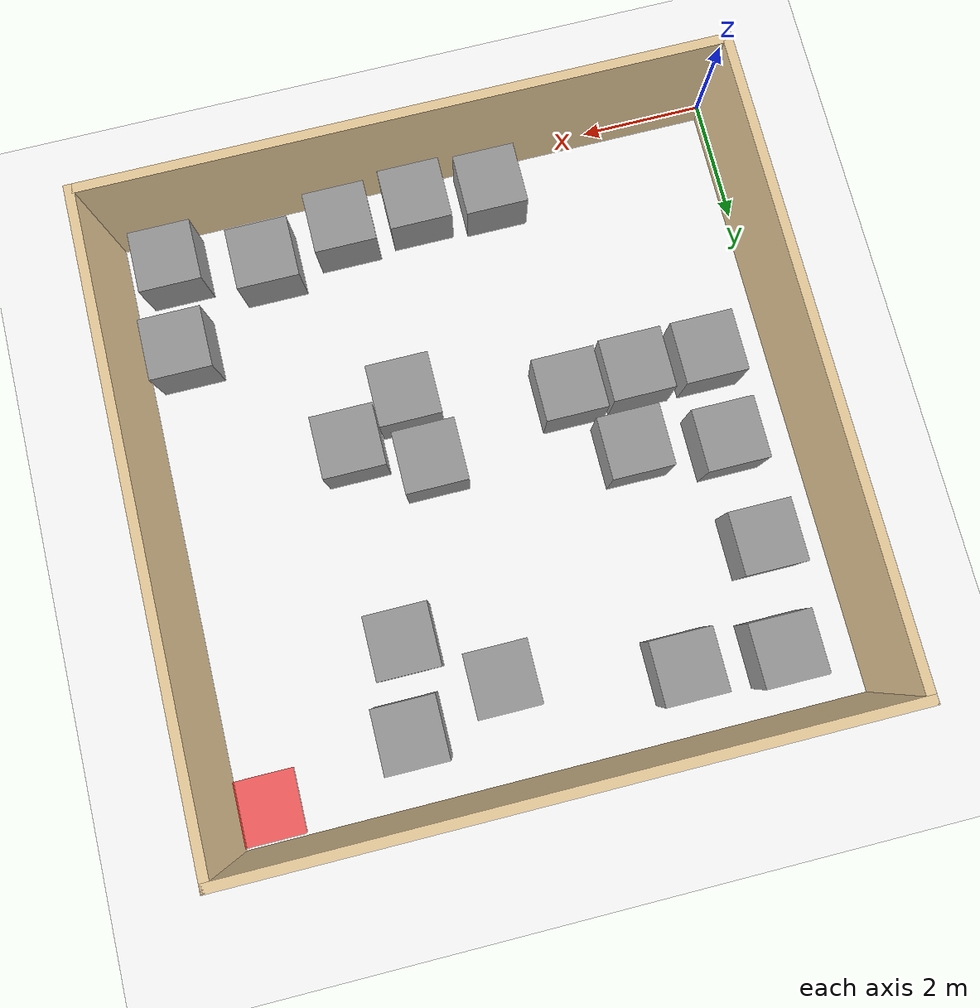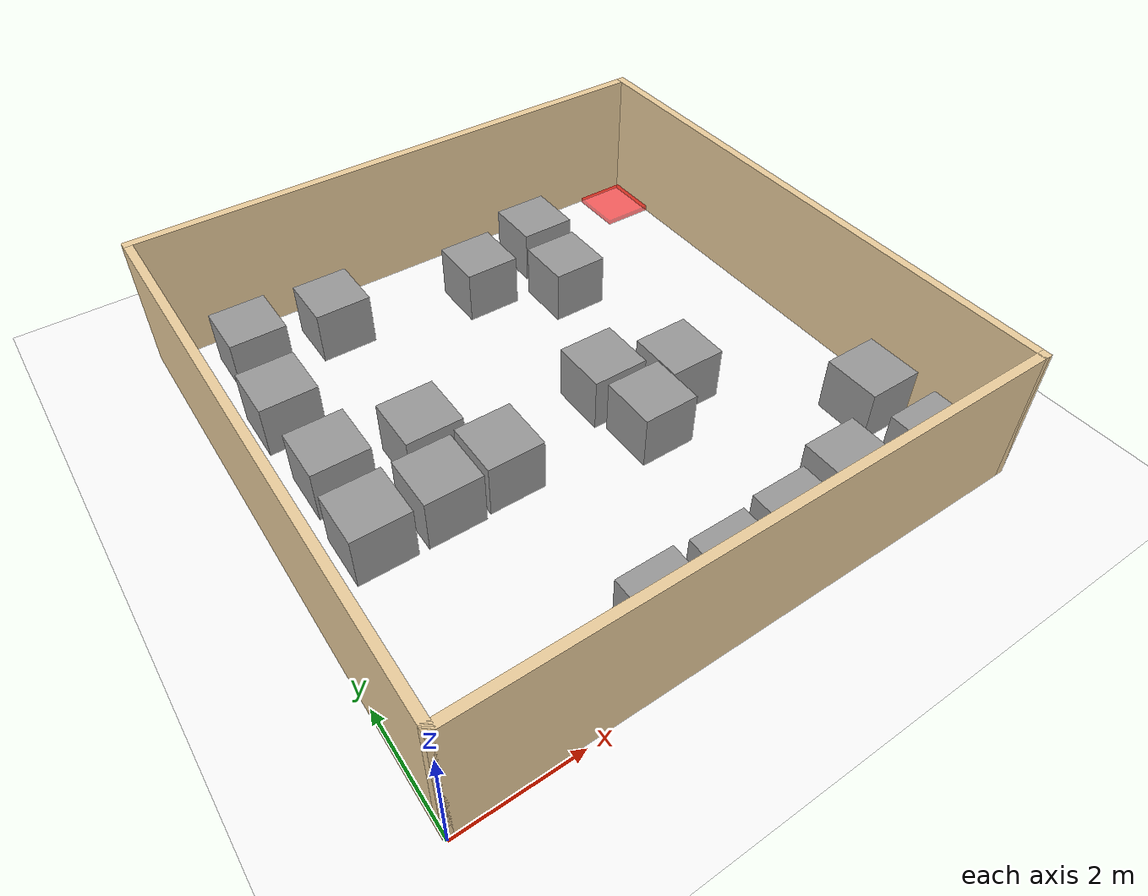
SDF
<sdf version="1.7">
 <world name="default">
  <light name="sun" type="directional">
   <pose>0 0 10 0 -0 0</pose>
   <diffuse>0.8 0.8 0.8 1</diffuse>
   <specular>0.2 0.2 0.2 1</specular>
   <attenuation>
    <range>1000</range>
    <constant>0.9</constant>
    <linear>0.01</linear>
    <quadratic>0.001</quadratic>
   </attenuation>
   <direction>-0.5 0.1 -0.9</direction>
   <spot><inner_angle>0</inner_angle><outer_angle>0</outer_angle><falloff>0</falloff></spot>
  </light>
  <gravity>0 0 -9.8</gravity>
  <magnetic_field>6e-06 2.3e-05 -4.2e-05</magnetic_field>
  <atmosphere type="adiabatic"/>
  <physics type="ode">
   <max_step_size>0.001</max_step_size>
   <real_time_factor>1</real_time_factor>
   <real_time_update_rate>1000</real_time_update_rate>
  </physics>
  <scene><ambient>0.4 0.4 0.4 1</ambient><background>0.7 0.7 0.7 1</background><shadows>1</shadows></scene>
  <audio><device>default</device></audio>
  <spherical_coordinates>
   <surface_model>EARTH_WGS84</surface_model>
   <latitude_deg>0</latitude_deg>
   <longitude_deg>0</longitude_deg>
   <elevation>0</elevation>
   <heading_deg>0</heading_deg>
  </spherical_coordinates>
  <model name="WALL">
   <pose>5.02351 5.11424 0 0 -0 0</pose>
   <link name="Wall_0">
    <collision name="Wall_0_Collision">
     <geometry><box><size>10.15 0.15 2.5</size></box></geometry>
     <pose>0 0 1.25 0 -0 0</pose>
    </collision>
    <visual name="Wall_0_Visual">
     <pose>0 0 1.25 0 -0 0</pose>
     <geometry><box><size>10.15 0.15 2.5</size></box></geometry>
     <material>
      <script><uri>file://media/materials/scripts/gazebo.material</uri><name>Gazebo/Grey</name></script>
      <ambient>0.921569 0.807843 0.615686 1</ambient>
     </material>
     <meta><layer>0</layer></meta>
    </visual>
    <pose>-5 -0 0 0 -0 1.5708</pose>
   </link>
   <link name="Wall_2">
    <collision name="Wall_2_Collision">
     <geometry><box><size>10.15 0.15 2.5</size></box></geometry>
     <pose>0 0 1.25 0 -0 0</pose>
    </collision>
    <visual name="Wall_2_Visual">
     <pose>0 0 1.25 0 -0 0</pose>
     <geometry><box><size>10.15 0.15 2.5</size></box></geometry>
     <material>
      <script><uri>file://media/materials/scripts/gazebo.material</uri><name>Gazebo/Grey</name></script>
      <ambient>0.921569 0.807843 0.615686 1</ambient>
     </material>
     <meta><layer>0</layer></meta>
    </visual>
    <pose>-0 -5 0 0 -0 0</pose>
   </link>
   <link name="Wall_4">
    <collision name="Wall_4_Collision">
     <geometry><box><size>10.15 0.15 2.5</size></box></geometry>
     <pose>0 0 1.25 0 -0 0</pose>
    </collision>
    <visual name="Wall_4_Visual">
     <pose>0 0 1.25 0 -0 0</pose>
     <geometry><box><size>10.15 0.15 2.5</size></box></geometry>
     <material>
      <script><uri>file://media/materials/scripts/gazebo.material</uri><name>Gazebo/Grey</name></script>
      <ambient>0.921569 0.807843 0.615686 1</ambient>
     </material>
     <meta><layer>0</layer></meta>
    </visual>
    <pose>5 -0 0 0 -0 1.5708</pose>
   </link>
   <link name="Wall_6">
    <collision name="Wall_6_Collision">
     <geometry><box><size>10.15 0.15 2.5</size></box></geometry>
     <pose>0 0 1.25 0 -0 0</pose>
    </collision>
    <visual name="Wall_6_Visual">
     <pose>0 0 1.25 0 -0 0</pose>
     <geometry><box><size>10.15 0.15 2.5</size></box></geometry>
     <material>
      <script><uri>file://media/materials/scripts/gazebo.material</uri><name>Gazebo/Grey</name></script>
      <ambient>0.921569 0.807843 0.615686 1</ambient>
     </material>
     <meta><layer>0</layer></meta>
    </visual>
    <pose>-0 5 0 0 -0 3.14159</pose>
   </link>
   <static>1</static>
  </model>
  <model name="ground_plane">
   <static>1</static>
   <link name="link">
    <collision name="collision">
     <geometry><plane><normal>0 0 1</normal><size>100 100</size></plane></geometry>
     <surface><friction><ode><mu>100</mu><mu2>50</mu2></ode></friction></surface>
    </collision>
    <visual name="visual">
     <cast_shadows>0</cast_shadows>
     <geometry><plane><normal>0 0 1</normal><size>100 100</size></plane></geometry>
     <material><ambient>1 1 1 1</ambient><diffuse>1 1 1 1</diffuse></material>
    </visual>
   </link>
   <pose>-1.76997 -0.846079 0 0 -0 0</pose>
  </model>
  <model name="goal_region">
   <static>1</static>
   <pose>9.5 9.5 0.05 0 -0 0</pose>
   <link name="link">
    <visual name="visual">
     <geometry><box><size>1 1 0.1</size></box></geometry>
     <material><ambient>1 0 0 0.6</ambient><diffuse>1 0 0 0.6</diffuse></material>
    </visual>
   </link>
  </model>
  <model name="start_marker"><static>1</static><pose>1 1 0 0 -0 0</pose></model>
  <model name="unit_box">
   <pose>9.16062 0.812785 0.499995 -1e-05 -0 -0</pose>
   <link name="link">
    <inertial>
     <mass>1</mass>
     <inertia>
      <ixx>0.166667</ixx>
      <ixy>0</ixy>
      <ixz>0</ixz>
      <iyy>0.166667</iyy>
      <iyz>0</iyz>
      <izz>0.166667</izz>
     </inertia>
    </inertial>
    <collision name="collision"><geometry><box><size>1 1 1</size></box></geometry></collision>
    <visual name="visual">
     <geometry><box><size>1 1 1</size></box></geometry>
     <material>
      <script><name>Gazebo/Grey</name><uri>file://media/materials/scripts/gazebo.material</uri></script>
     </material>
    </visual>
   </link>
  </model>
  <model name="unit_box_0">
   <pose>9.27455 2.25101 0.499995 0 1e-05 0</pose>
   <link name="link">
    <inertial>
     <mass>1</mass>
     <inertia>
      <ixx>0.166667</ixx>
      <ixy>0</ixy>
      <ixz>0</ixz>
      <iyy>0.166667</iyy>
      <iyz>0</iyz>
      <izz>0.166667</izz>
     </inertia>
    </inertial>
    <collision name="collision"><geometry><box><size>1 1 1</size></box></geometry></collision>
    <visual name="visual">
     <geometry><box><size>1 1 1</size></box></geometry>
     <material>
      <script><name>Gazebo/Grey</name><uri>file://media/materials/scripts/gazebo.material</uri></script>
     </material>
    </visual>
   </link>
  </model>
  <model name="unit_box_1">
   <pose>7.6506 1.13055 0.499995 -1e-05 -0 -0</pose>
   <link name="link">
    <inertial>
     <mass>1</mass>
     <inertia>
      <ixx>0.166667</ixx>
      <ixy>0</ixy>
      <ixz>0</ixz>
      <iyy>0.166667</iyy>
      <iyz>0</iyz>
      <izz>0.166667</izz>
     </inertia>
    </inertial>
    <collision name="collision"><geometry><box><size>1 1 1</size></box></geometry></collision>
    <visual name="visual">
     <geometry><box><size>1 1 1</size></box></geometry>
     <material>
      <script><name>Gazebo/Grey</name><uri>file://media/materials/scripts/gazebo.material</uri></script>
     </material>
    </visual>
   </link>
  </model>
  <model name="unit_box_2">
   <pose>1.32242 9.06363 0.499995 0 1e-05 0</pose>
   <link name="link">
    <inertial>
     <mass>1</mass>
     <inertia>
      <ixx>0.166667</ixx>
      <ixy>0</ixy>
      <ixz>0</ixz>
      <iyy>0.166667</iyy>
      <iyz>0</iyz>
      <izz>0.166667</izz>
     </inertia>
    </inertial>
    <collision name="collision"><geometry><box><size>1 1 1</size></box></geometry></collision>
    <visual name="visual">
     <geometry><box><size>1 1 1</size></box></geometry>
     <material>
      <script><name>Gazebo/Grey</name><uri>file://media/materials/scripts/gazebo.material</uri></script>
     </material>
    </visual>
   </link>
  </model>
  <model name="unit_box_3">
   <pose>1.14847 7.38331 0.499995 -1e-05 -0 -0</pose>
   <link name="link">
    <inertial>
     <mass>1</mass>
     <inertia>
      <ixx>0.166667</ixx>
      <ixy>0</ixy>
      <ixz>0</ixz>
      <iyy>0.166667</iyy>
      <iyz>0</iyz>
      <izz>0.166667</izz>
     </inertia>
    </inertial>
    <collision name="collision"><geometry><box><size>1 1 1</size></box></geometry></collision>
    <visual name="visual">
     <geometry><box><size>1 1 1</size></box></geometry>
     <material>
      <script><name>Gazebo/Grey</name><uri>file://media/materials/scripts/gazebo.material</uri></script>
     </material>
    </visual>
   </link>
  </model>
  <model name="unit_box_4">
   <pose>2.83275 8.96056 0.499995 0 1e-05 0</pose>
   <link name="link">
    <inertial>
     <mass>1</mass>
     <inertia>
      <ixx>0.166667</ixx>
      <ixy>0</ixy>
      <ixz>0</ixz>
      <iyy>0.166667</iyy>
      <iyz>0</iyz>
      <izz>0.166667</izz>
     </inertia>
    </inertial>
    <collision name="collision"><geometry><box><size>1 1 1</size></box></geometry></collision>
    <visual name="visual">
     <geometry><box><size>1 1 1</size></box></geometry>
     <material>
      <script><name>Gazebo/Grey</name><uri>file://media/materials/scripts/gazebo.material</uri></script>
     </material>
    </visual>
   </link>
  </model>
  <model name="unit_box_5">
   <pose>7.07976 8.92477 0.499995 -1e-05 -0 -0</pose>
   <link name="link">
    <inertial>
     <mass>1</mass>
     <inertia>
      <ixx>0.166667</ixx>
      <ixy>0</ixy>
      <ixz>0</ixz>
      <iyy>0.166667</iyy>
      <iyz>0</iyz>
      <izz>0.166667</izz>
     </inertia>
    </inertial>
    <collision name="collision"><geometry><box><size>1 1 1</size></box></geometry></collision>
    <visual name="visual">
     <geometry><box><size>1 1 1</size></box></geometry>
     <material>
      <script><name>Gazebo/Grey</name><uri>file://media/materials/scripts/gazebo.material</uri></script>
     </material>
    </visual>
   </link>
  </model>
  <model name="unit_box_6">
   <pose>6.88711 7.57322 0.499995 0 1e-05 0</pose>
   <link name="link">
    <inertial>
     <mass>1</mass>
     <inertia>
      <ixx>0.166667</ixx>
      <ixy>0</ixy>
      <ixz>0</ixz>
      <iyy>0.166667</iyy>
      <iyz>0</iyz>
      <izz>0.166667</izz>
     </inertia>
    </inertial>
    <collision name="collision"><geometry><box><size>1 1 1</size></box></geometry></collision>
    <visual name="visual">
     <geometry><box><size>1 1 1</size></box></geometry>
     <material>
      <script><name>Gazebo/Grey</name><uri>file://media/materials/scripts/gazebo.material</uri></script>
     </material>
    </visual>
   </link>
  </model>
  <model name="unit_box_7">
   <pose>5.56168 8.46811 0.499995 -1e-05 -0 -0</pose>
   <link name="link">
    <inertial>
     <mass>1</mass>
     <inertia>
      <ixx>0.166667</ixx>
      <ixy>0</ixy>
      <ixz>0</ixz>
      <iyy>0.166667</iyy>
      <iyz>0</iyz>
      <izz>0.166667</izz>
     </inertia>
    </inertial>
    <collision name="collision"><geometry><box><size>1 1 1</size></box></geometry></collision>
    <visual name="visual">
     <geometry><box><size>1 1 1</size></box></geometry>
     <material>
      <script><name>Gazebo/Grey</name><uri>file://media/materials/scripts/gazebo.material</uri></script>
     </material>
    </visual>
   </link>
  </model>
  <model name="unit_box_8">
   <pose>7.00242 4.41621 0.499995 0 1e-05 0</pose>
   <link name="link">
    <inertial>
     <mass>1</mass>
     <inertia>
      <ixx>0.166667</ixx>
      <ixy>0</ixy>
      <ixz>0</ixz>
      <iyy>0.166667</iyy>
      <iyz>0</iyz>
      <izz>0.166667</izz>
     </inertia>
    </inertial>
    <collision name="collision"><geometry><box><size>1 1 1</size></box></geometry></collision>
    <visual name="visual">
     <geometry><box><size>1 1 1</size></box></geometry>
     <material>
      <script><name>Gazebo/Grey</name><uri>file://media/materials/scripts/gazebo.material</uri></script>
     </material>
    </visual>
   </link>
  </model>
  <model name="unit_box_9">
   <pose>5.82545 4.94545 0.499995 -1e-05 -0 -0</pose>
   <link name="link">
    <inertial>
     <mass>1</mass>
     <inertia>
      <ixx>0.166667</ixx>
      <ixy>0</ixy>
      <ixz>0</ixz>
      <iyy>0.166667</iyy>
      <iyz>0</iyz>
      <izz>0.166667</izz>
     </inertia>
    </inertial>
    <collision name="collision"><geometry><box><size>1 1 1</size></box></geometry></collision>
    <visual name="visual">
     <geometry><box><size>1 1 1</size></box></geometry>
     <material>
      <script><name>Gazebo/Grey</name><uri>file://media/materials/scripts/gazebo.material</uri></script>
     </material>
    </visual>
   </link>
  </model>
  <model name="unit_box_10">
   <pose>5.98219 3.83222 0.499995 0 1e-05 0</pose>
   <link name="link">
    <inertial>
     <mass>1</mass>
     <inertia>
      <ixx>0.166667</ixx>
      <ixy>0</ixy>
      <ixz>0</ixz>
      <iyy>0.166667</iyy>
      <iyz>0</iyz>
      <izz>0.166667</izz>
     </inertia>
    </inertial>
    <collision name="collision"><geometry><box><size>1 1 1</size></box></geometry></collision>
    <visual name="visual">
     <geometry><box><size>1 1 1</size></box></geometry>
     <material>
      <script><name>Gazebo/Grey</name><uri>file://media/materials/scripts/gazebo.material</uri></script>
     </material>
    </visual>
   </link>
  </model>
  <model name="unit_box_11">
   <pose>1.19771 4.30994 0.499995 -1e-05 -0 -0</pose>
   <link name="link">
    <inertial>
     <mass>1</mass>
     <inertia>
      <ixx>0.166667</ixx>
      <ixy>0</ixy>
      <ixz>0</ixz>
      <iyy>0.166667</iyy>
      <iyz>0</iyz>
      <izz>0.166667</izz>
     </inertia>
    </inertial>
    <collision name="collision"><geometry><box><size>1 1 1</size></box></geometry></collision>
    <visual name="visual">
     <geometry><box><size>1 1 1</size></box></geometry>
     <material>
      <script><name>Gazebo/Grey</name><uri>file://media/materials/scripts/gazebo.material</uri></script>
     </material>
    </visual>
   </link>
  </model>
  <model name="unit_box_12">
   <pose>2.36471 4.30993 0.499995 0 1e-05 0</pose>
   <link name="link">
    <inertial>
     <mass>1</mass>
     <inertia>
      <ixx>0.166667</ixx>
      <ixy>0</ixy>
      <ixz>0</ixz>
      <iyy>0.166667</iyy>
      <iyz>0</iyz>
      <izz>0.166667</izz>
     </inertia>
    </inertial>
    <collision name="collision"><geometry><box><size>1 1 1</size></box></geometry></collision>
    <visual name="visual">
     <geometry><box><size>1 1 1</size></box></geometry>
     <material>
      <script><name>Gazebo/Grey</name><uri>file://media/materials/scripts/gazebo.material</uri></script>
     </material>
    </visual>
   </link>
  </model>
  <model name="unit_box_13">
   <pose>3.45679 4.3617 0.499995 -1e-05 -0 -0</pose>
   <link name="link">
    <inertial>
     <mass>1</mass>
     <inertia>
      <ixx>0.166667</ixx>
      <ixy>0</ixy>
      <ixz>0</ixz>
      <iyy>0.166667</iyy>
      <iyz>0</iyz>
      <izz>0.166667</izz>
     </inertia>
    </inertial>
    <collision name="collision"><geometry><box><size>1 1 1</size></box></geometry></collision>
    <visual name="visual">
     <geometry><box><size>1 1 1</size></box></geometry>
     <material>
      <script><name>Gazebo/Grey</name><uri>file://media/materials/scripts/gazebo.material</uri></script>
     </material>
    </visual>
   </link>
  </model>
  <model name="unit_box_14">
   <pose>5.07993 0.747894 0.499995 0 1e-05 0</pose>
   <link name="link">
    <inertial>
     <mass>1</mass>
     <inertia>
      <ixx>0.166667</ixx>
      <ixy>0</ixy>
      <ixz>0</ixz>
      <iyy>0.166667</iyy>
      <iyz>0</iyz>
      <izz>0.166667</izz>
     </inertia>
    </inertial>
    <collision name="collision"><geometry><box><size>1 1 1</size></box></geometry></collision>
    <visual name="visual">
     <geometry><box><size>1 1 1</size></box></geometry>
     <material>
      <script><name>Gazebo/Grey</name><uri>file://media/materials/scripts/gazebo.material</uri></script>
     </material>
    </visual>
   </link>
  </model>
  <model name="unit_box_15">
   <pose>3.84581 0.79755 0.499995 -1e-05 -0 -0</pose>
   <link name="link">
    <inertial>
     <mass>1</mass>
     <inertia>
      <ixx>0.166667</ixx>
      <ixy>0</ixy>
      <ixz>0</ixz>
      <iyy>0.166667</iyy>
      <iyz>0</iyz>
      <izz>0.166667</izz>
     </inertia>
    </inertial>
    <collision name="collision"><geometry><box><size>1 1 1</size></box></geometry></collision>
    <visual name="visual">
     <geometry><box><size>1 1 1</size></box></geometry>
     <material>
      <script><name>Gazebo/Grey</name><uri>file://media/materials/scripts/gazebo.material</uri></script>
     </material>
    </visual>
   </link>
  </model>
  <model name="unit_box_16">
   <pose>1.25429 5.72332 0.499995 0 1e-05 0</pose>
   <link name="link">
    <inertial>
     <mass>1</mass>
     <inertia>
      <ixx>0.166667</ixx>
      <ixy>0</ixy>
      <ixz>0</ixz>
      <iyy>0.166667</iyy>
      <iyz>0</iyz>
      <izz>0.166667</izz>
     </inertia>
    </inertial>
    <collision name="collision"><geometry><box><size>1 1 1</size></box></geometry></collision>
    <visual name="visual">
     <geometry><box><size>1 1 1</size></box></geometry>
     <material>
      <script><name>Gazebo/Grey</name><uri>file://media/materials/scripts/gazebo.material</uri></script>
     </material>
    </visual>
   </link>
  </model>
  <model name="unit_box_17">
   <pose>2.70393 5.48818 0.499995 -1e-05 -0 0</pose>
   <link name="link">
    <inertial>
     <mass>1</mass>
     <inertia>
      <ixx>0.166667</ixx>
      <ixy>0</ixy>
      <ixz>0</ixz>
      <iyy>0.166667</iyy>
      <iyz>0</iyz>
      <izz>0.166667</izz>
     </inertia>
    </inertial>
    <collision name="collision"><geometry><box><size>1 1 1</size></box></geometry></collision>
    <visual name="visual">
     <geometry><box><size>1 1 1</size></box></geometry>
     <material>
      <script><name>Gazebo/Grey</name><uri>file://media/materials/scripts/gazebo.material</uri></script>
     </material>
    </visual>
   </link>
  </model>
  <model name="unit_box_18">
   <pose>6.33132 0.839445 0.5 0 -0 0</pose>
   <link name="link">
    <inertial>
     <mass>1</mass>
     <inertia>
      <ixx>0.166667</ixx>
      <ixy>0</ixy>
      <ixz>0</ixz>
      <iyy>0.166667</iyy>
      <iyz>0</iyz>
      <izz>0.166667</izz>
     </inertia>
    </inertial>
    <collision name="collision"><geometry><box><size>1 1 1</size></box></geometry></collision>
    <visual name="visual">
     <geometry><box><size>1 1 1</size></box></geometry>
     <material>
      <script><name>Gazebo/Grey</name><uri>file://media/materials/scripts/gazebo.material</uri></script>
     </material>
    </visual>
   </link>
  </model>
 </world>
</sdf>
